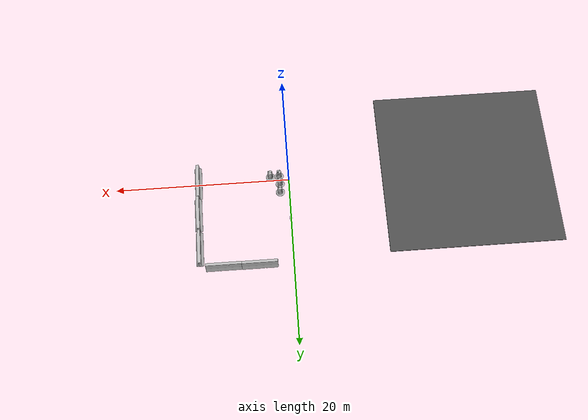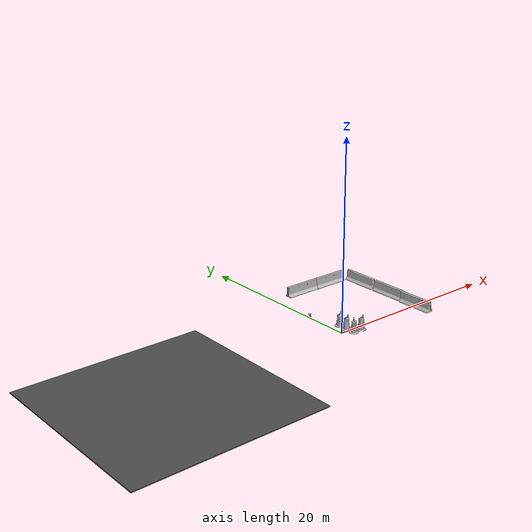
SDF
<sdf version="1.4">
 <world name="default">
  <model name="asphalt_plane">
   <static>1</static>
   <link name="link">
    <collision name="collision"><geometry><box><size>20 20 0.1</size></box></geometry></collision>
    <visual name="visual">
     <cast_shadows>0</cast_shadows>
     <geometry><box><size>20 20 0.1</size></box></geometry>
     <material>
      <script>
       <uri>model://asphalt_plane/materials/scripts</uri>
       <uri>model://asphalt_plane/materials/textures</uri>
       <name>vrc/asphalt</name>
      </script>
     </material>
    </visual>
    <velocity_decay><linear>0</linear><angular>0</angular></velocity_decay>
   </link>
   <pose>-20.8561 -0.082108 0 0 -0 0</pose>
  </model>
  <model name="jersey_barrier_4">
   <static>1</static>
   <link name="link">
    <visual name="visual">
     <geometry><mesh><uri>model://jersey_barrier/meshes/jersey_barrier.dae</uri></mesh></geometry>
    </visual>
    <collision name="upright">
     <pose>0 0 0.5715 0 -0 0</pose>
     <geometry><box><size>4.06542 0.3063 1.143</size></box></geometry>
    </collision>
    <collision name="base">
     <pose>0 0 0.032258 0 -0 0</pose>
     <geometry><box><size>4.06542 0.8107 0.064516</size></box></geometry>
    </collision>
    <collision name="base2">
     <pose>0 0 0.1 0 -0 0</pose>
     <geometry><box><size>4.06542 0.65 0.1</size></box></geometry>
    </collision>
    <collision name="base3">
     <pose>0 0 0.2 0 -0 0</pose>
     <geometry><box><size>4.06542 0.5 0.1</size></box></geometry>
    </collision>
    <collision name="left-angle">
     <pose>0 -0.224 0.2401 0.9 -0 0</pose>
     <geometry><box><size>4.06542 0.5 0.064516</size></box></geometry>
    </collision>
    <collision name="right-angle">
     <pose>0 0.224 0.2401 -0.9 0 0</pose>
     <geometry><box><size>4.06542 0.5 0.064516</size></box></geometry>
    </collision>
    <velocity_decay><linear>0</linear><angular>0</angular></velocity_decay>
   </link>
   <pose>3.84438 10.4465 0 0 -0 0</pose>
  </model>
  <model name="jersey_barrier_6">
   <static>1</static>
   <link name="link">
    <visual name="visual">
     <geometry><mesh><uri>model://jersey_barrier/meshes/jersey_barrier.dae</uri></mesh></geometry>
    </visual>
    <collision name="upright">
     <pose>0 0 0.5715 0 -0 0</pose>
     <geometry><box><size>4.06542 0.3063 1.143</size></box></geometry>
    </collision>
    <collision name="base">
     <pose>0 0 0.032258 0 -0 0</pose>
     <geometry><box><size>4.06542 0.8107 0.064516</size></box></geometry>
    </collision>
    <collision name="base2">
     <pose>0 0 0.1 0 -0 0</pose>
     <geometry><box><size>4.06542 0.65 0.1</size></box></geometry>
    </collision>
    <collision name="base3">
     <pose>0 0 0.2 0 -0 0</pose>
     <geometry><box><size>4.06542 0.5 0.1</size></box></geometry>
    </collision>
    <collision name="left-angle">
     <pose>0 -0.224 0.2401 0.9 -0 0</pose>
     <geometry><box><size>4.06542 0.5 0.064516</size></box></geometry>
    </collision>
    <collision name="right-angle">
     <pose>0 0.224 0.2401 -0.9 0 0</pose>
     <geometry><box><size>4.06542 0.5 0.064516</size></box></geometry>
    </collision>
    <velocity_decay><linear>0</linear><angular>0</angular></velocity_decay>
   </link>
   <pose>7.83966 10.4295 0 0 -0 0</pose>
  </model>
  <model name="jersey_barrier_9">
   <static>1</static>
   <link name="link">
    <visual name="visual">
     <geometry><mesh><uri>model://jersey_barrier/meshes/jersey_barrier.dae</uri></mesh></geometry>
    </visual>
    <collision name="upright">
     <pose>0 0 0.5715 0 -0 0</pose>
     <geometry><box><size>4.06542 0.3063 1.143</size></box></geometry>
    </collision>
    <collision name="base">
     <pose>0 0 0.032258 0 -0 0</pose>
     <geometry><box><size>4.06542 0.8107 0.064516</size></box></geometry>
    </collision>
    <collision name="base2">
     <pose>0 0 0.1 0 -0 0</pose>
     <geometry><box><size>4.06542 0.65 0.1</size></box></geometry>
    </collision>
    <collision name="base3">
     <pose>0 0 0.2 0 -0 0</pose>
     <geometry><box><size>4.06542 0.5 0.1</size></box></geometry>
    </collision>
    <collision name="left-angle">
     <pose>0 -0.224 0.2401 0.9 -0 0</pose>
     <geometry><box><size>4.06542 0.5 0.064516</size></box></geometry>
    </collision>
    <collision name="right-angle">
     <pose>0 0.224 0.2401 -0.9 0 0</pose>
     <geometry><box><size>4.06542 0.5 0.064516</size></box></geometry>
    </collision>
    <velocity_decay><linear>0</linear><angular>0</angular></velocity_decay>
   </link>
   <pose>10.5684 3.91215 0 0 -0 1.58811</pose>
  </model>
  <model name="jersey_barrier_10">
   <static>1</static>
   <link name="link">
    <visual name="visual">
     <geometry><mesh><uri>model://jersey_barrier/meshes/jersey_barrier.dae</uri></mesh></geometry>
    </visual>
    <collision name="upright">
     <pose>0 0 0.5715 0 -0 0</pose>
     <geometry><box><size>4.06542 0.3063 1.143</size></box></geometry>
    </collision>
    <collision name="base">
     <pose>0 0 0.032258 0 -0 0</pose>
     <geometry><box><size>4.06542 0.8107 0.064516</size></box></geometry>
    </collision>
    <collision name="base2">
     <pose>0 0 0.1 0 -0 0</pose>
     <geometry><box><size>4.06542 0.65 0.1</size></box></geometry>
    </collision>
    <collision name="base3">
     <pose>0 0 0.2 0 -0 0</pose>
     <geometry><box><size>4.06542 0.5 0.1</size></box></geometry>
    </collision>
    <collision name="left-angle">
     <pose>0 -0.224 0.2401 0.9 -0 0</pose>
     <geometry><box><size>4.06542 0.5 0.064516</size></box></geometry>
    </collision>
    <collision name="right-angle">
     <pose>0 0.224 0.2401 -0.9 0 0</pose>
     <geometry><box><size>4.06542 0.5 0.064516</size></box></geometry>
    </collision>
    <velocity_decay><linear>0</linear><angular>0</angular></velocity_decay>
   </link>
   <pose>10.5161 8.14601 0 0 -0 1.57825</pose>
  </model>
  <model name="jersey_barrier_11">
   <static>1</static>
   <link name="link">
    <visual name="visual">
     <geometry><mesh><uri>model://jersey_barrier/meshes/jersey_barrier.dae</uri></mesh></geometry>
    </visual>
    <collision name="upright">
     <pose>0 0 0.5715 0 -0 0</pose>
     <geometry><box><size>4.06542 0.3063 1.143</size></box></geometry>
    </collision>
    <collision name="base">
     <pose>0 0 0.032258 0 -0 0</pose>
     <geometry><box><size>4.06542 0.8107 0.064516</size></box></geometry>
    </collision>
    <collision name="base2">
     <pose>0 0 0.1 0 -0 0</pose>
     <geometry><box><size>4.06542 0.65 0.1</size></box></geometry>
    </collision>
    <collision name="base3">
     <pose>0 0 0.2 0 -0 0</pose>
     <geometry><box><size>4.06542 0.5 0.1</size></box></geometry>
    </collision>
    <collision name="left-angle">
     <pose>0 -0.224 0.2401 0.9 -0 0</pose>
     <geometry><box><size>4.06542 0.5 0.064516</size></box></geometry>
    </collision>
    <collision name="right-angle">
     <pose>0 0.224 0.2401 -0.9 0 0</pose>
     <geometry><box><size>4.06542 0.5 0.064516</size></box></geometry>
    </collision>
    <velocity_decay><linear>0</linear><angular>0</angular></velocity_decay>
   </link>
   <pose>10.516 -0.139078 0 0 -0 1.58306</pose>
  </model>
  <model name="Construction Barrel_1">
   <link name="link">
    <inertial>
     <pose>0 0 0.4 0 -0 0</pose>
     <mass>500</mass>
     <inertia><ixx>51.2096</ixx><iyy>51.2096</iyy><izz>25</izz><ixy>0</ixy><ixz>0</ixz><iyz>0</iyz></inertia>
    </inertial>
    <collision name="collision">
     <geometry><mesh><uri>model://construction_barrel/meshes/construction_barrel.dae</uri></mesh></geometry>
    </collision>
    <visual name="visual">
     <geometry><mesh><uri>model://construction_barrel/meshes/construction_barrel.dae</uri></mesh></geometry>
    </visual>
    <velocity_decay><linear>0</linear><angular>0</angular></velocity_decay>
   </link>
   <pose>2.14353 -0.507203 -9.2e-05 -9.3e-05 -0.000348 -0.037388</pose>
   <static>0</static>
  </model>
  <model name="Construction Barrel_6">
   <link name="link">
    <inertial>
     <pose>0 0 0.4 0 -0 0</pose>
     <mass>500</mass>
     <inertia><ixx>51.2096</ixx><iyy>51.2096</iyy><izz>25</izz><ixy>0</ixy><ixz>0</ixz><iyz>0</iyz></inertia>
    </inertial>
    <collision name="collision">
     <geometry><mesh><uri>model://construction_barrel/meshes/construction_barrel.dae</uri></mesh></geometry>
    </collision>
    <visual name="visual">
     <geometry><mesh><uri>model://construction_barrel/meshes/construction_barrel.dae</uri></mesh></geometry>
    </visual>
    <velocity_decay><linear>0</linear><angular>0</angular></velocity_decay>
   </link>
   <pose>1.12851 -0.53319 -9.1e-05 -9.2e-05 -0.000347 0.954897</pose>
   <static>0</static>
  </model>
  <model name="Construction Barrel_7">
   <link name="link">
    <inertial>
     <pose>0 0 0.4 0 -0 0</pose>
     <mass>500</mass>
     <inertia><ixx>51.2096</ixx><iyy>51.2096</iyy><izz>25</izz><ixy>0</ixy><ixz>0</ixz><iyz>0</iyz></inertia>
    </inertial>
    <collision name="collision">
     <geometry><mesh><uri>model://construction_barrel/meshes/construction_barrel.dae</uri></mesh></geometry>
    </collision>
    <visual name="visual">
     <geometry><mesh><uri>model://construction_barrel/meshes/construction_barrel.dae</uri></mesh></geometry>
    </visual>
    <velocity_decay><linear>0</linear><angular>0</angular></velocity_decay>
   </link>
   <pose>1.06107 0.489439 -0.000169 0.000504 0.000208 0.04856</pose>
   <static>0</static>
  </model>
  <model name="Construction Barrel_8">
   <link name="link">
    <inertial>
     <pose>0 0 0.4 0 -0 0</pose>
     <mass>500</mass>
     <inertia><ixx>51.2096</ixx><iyy>51.2096</iyy><izz>25</izz><ixy>0</ixy><ixz>0</ixz><iyz>0</iyz></inertia>
    </inertial>
    <collision name="collision">
     <geometry><mesh><uri>model://construction_barrel/meshes/construction_barrel.dae</uri></mesh></geometry>
    </collision>
    <visual name="visual">
     <geometry><mesh><uri>model://construction_barrel/meshes/construction_barrel.dae</uri></mesh></geometry>
    </visual>
    <velocity_decay><linear>0</linear><angular>0</angular></velocity_decay>
   </link>
   <pose>1.0951 1.53722 -9.1e-05 0.00031 0.000179 -0.005472</pose>
   <static>0</static>
  </model>
  <model name="turtlebot_4">
   <link name="rack">
    <inertial>
     <pose>0.001453 -0.000453 0.029787 0 -0 0</pose>
     <inertia>
      <ixx>0.05864</ixx>
      <ixy>0.000124</ixy>
      <ixz>0.000615</ixz>
      <iyy>0.058786</iyy>
      <iyz>1.4e-05</iyz>
      <izz>1.53244</izz>
     </inertia>
     <mass>2.234</mass>
    </inertial>
    <collision name="plate_0_collision">
     <pose>-0.04334 0 0.084757 0 -0 0</pose>
     <geometry><box><size>0.233502 0.314845 0.006401</size></box></geometry>
    </collision>
    <visual name="plate_0_visual">
     <pose>-0.04334 0 0.084757 0 -0 0</pose>
     <geometry><mesh><uri>model://turtlebot/meshes/plate_0_logo.dae</uri></mesh></geometry>
    </visual>
    <collision name="plate_1_collision">
     <pose>-0.00266 0 0.141907 0 -0 0</pose>
     <geometry><box><size>0.314856 0.314856 0.006401</size></box></geometry>
    </collision>
    <visual name="plate_1_visual">
     <pose>-0.00266 0 0.141907 0 -0 0</pose>
     <geometry><mesh><uri>model://turtlebot/meshes/plate_1_logo.dae</uri></mesh></geometry>
    </visual>
    <collision name="plate_2_collision">
     <pose>-0.00266 0 0.199108 0 -0 0</pose>
     <geometry><box><size>0.314856 0.314856 0.006401</size></box></geometry>
    </collision>
    <visual name="plate_2_visual">
     <pose>-0.00266 0 0.199108 0 -0 0</pose>
     <geometry><mesh><uri>model://turtlebot/meshes/plate_1_logo.dae</uri></mesh></geometry>
    </visual>
    <collision name="plate_3_collision">
     <pose>-0.01582 0 0.405457 0 -0 0</pose>
     <geometry><box><size>0.288 0.315 0.006401</size></box></geometry>
    </collision>
    <visual name="plate_3_visual">
     <pose>-0.01582 0 0.405457 0 -0 0</pose>
     <geometry><mesh><uri>model://turtlebot/meshes/plate_2_logo.dae</uri></mesh></geometry>
    </visual>
    <collision name="spacer_0_collision">
     <pose>-0.00254 0.111468 0.079992 0 -0 0</pose>
     <geometry><cylinder><radius>0.0127</radius><length>0.003175</length></cylinder></geometry>
    </collision>
    <visual name="spacer_0_visual">
     <pose>-0.00254 0.111468 0.079992 0 -0 0</pose>
     <geometry><mesh><uri>model://turtlebot/meshes/68-02403-125_Spacer.dae</uri></mesh></geometry>
    </visual>
    <collision name="spacer_1_collision">
     <pose>-0.00254 -0.111468 0.079992 0 -0 0</pose>
     <geometry><cylinder><radius>0.0127</radius><length>0.003175</length></cylinder></geometry>
    </collision>
    <visual name="spacer_1_visual">
     <pose>-0.00254 -0.111468 0.079992 0 -0 0</pose>
     <geometry><mesh><uri>model://turtlebot/meshes/68-02403-125_Spacer.dae</uri></mesh></geometry>
    </visual>
    <collision name="spacer_2_collision">
     <pose>-0.07239 -0.111468 0.079992 0 -0 0</pose>
     <geometry><cylinder><radius>0.0127</radius><length>0.003175</length></cylinder></geometry>
    </collision>
    <visual name="spacer_2_visual">
     <pose>-0.07239 -0.111468 0.079992 0 -0 0</pose>
     <geometry><mesh><uri>model://turtlebot/meshes/68-02403-125_Spacer.dae</uri></mesh></geometry>
    </visual>
    <collision name="spacer_3_collision">
     <pose>-0.07239 0.111468 0.079992 0 -0 0</pose>
     <geometry><cylinder><radius>0.0127</radius><length>0.003175</length></cylinder></geometry>
    </collision>
    <visual name="spacer_3_visual">
     <pose>-0.07239 0.111468 0.079992 0 -0 0</pose>
     <geometry><mesh><uri>model://turtlebot/meshes/68-02403-125_Spacer.dae</uri></mesh></geometry>
    </visual>
    <collision name="standoff_2in_0_collision">
     <pose>0.06764 0.13142 0.08798 0 -0 0</pose>
     <geometry><cylinder><radius>0.0381</radius><length>0.0635</length></cylinder></geometry>
    </collision>
    <visual name="standoff_2in_0_visual">
     <pose>0.06764 0.13142 0.08798 0 -0 0</pose>
     <geometry>
      <mesh><uri>model://turtlebot/meshes/68-04552-2000-RA_Turtlebot_M-F_Standoff.dae</uri></mesh>
     </geometry>
    </visual>
    <collision name="standoff_2in_1_collision">
     <pose>0.06764 -0.13142 0.08798 0 -0 0</pose>
     <geometry><cylinder><radius>0.0381</radius><length>0.0635</length></cylinder></geometry>
    </collision>
    <visual name="standoff_2in_1_visual">
     <pose>0.06764 -0.13142 0.08798 0 -0 0</pose>
     <geometry>
      <mesh><uri>model://turtlebot/meshes/68-04552-2000-RA_Turtlebot_M-F_Standoff.dae</uri></mesh>
     </geometry>
    </visual>
    <collision name="standoff_2in_2_collision">
     <pose>-0.052832 -0.13142 0.08798 0 -0 0</pose>
     <geometry><cylinder><radius>0.0381</radius><length>0.0635</length></cylinder></geometry>
    </collision>
    <visual name="standoff_2in_2_visual">
     <pose>-0.052832 -0.13142 0.08798 0 -0 0</pose>
     <geometry>
      <mesh><uri>model://turtlebot/meshes/68-04552-2000-RA_Turtlebot_M-F_Standoff.dae</uri></mesh>
     </geometry>
    </visual>
    <collision name="standoff_2in_3_collision">
     <pose>-0.052832 0.13142 0.08798 0 -0 0</pose>
     <geometry><cylinder><radius>0.0381</radius><length>0.0635</length></cylinder></geometry>
    </collision>
    <visual name="standoff_2in_3_visual">
     <pose>-0.052832 0.13142 0.08798 0 -0 0</pose>
     <geometry>
      <mesh><uri>model://turtlebot/meshes/68-04552-2000-RA_Turtlebot_M-F_Standoff.dae</uri></mesh>
     </geometry>
    </visual>
    <collision name="standoff_2in_4_collision">
     <pose>0.06764 0.13142 0.14513 0 -0 0</pose>
     <geometry><cylinder><radius>0.0381</radius><length>0.0635</length></cylinder></geometry>
    </collision>
    <visual name="standoff_2in_4_visual">
     <pose>0.06764 0.13142 0.14513 0 -0 0</pose>
     <geometry>
      <mesh><uri>model://turtlebot/meshes/68-04552-2000-RA_Turtlebot_M-F_Standoff.dae</uri></mesh>
     </geometry>
    </visual>
    <collision name="standoff_2in_5_collision">
     <pose>0.06764 -0.13142 0.14513 0 -0 0</pose>
     <geometry><cylinder><radius>0.0381</radius><length>0.0635</length></cylinder></geometry>
    </collision>
    <visual name="standoff_2in_5_visual">
     <pose>0.06764 -0.13142 0.14513 0 -0 0</pose>
     <geometry>
      <mesh><uri>model://turtlebot/meshes/68-04552-2000-RA_Turtlebot_M-F_Standoff.dae</uri></mesh>
     </geometry>
    </visual>
    <collision name="standoff_2in_6_collision">
     <pose>-0.052832 -0.13142 0.14513 0 -0 0</pose>
     <geometry><cylinder><radius>0.0381</radius><length>0.0635</length></cylinder></geometry>
    </collision>
    <visual name="standoff_2in_6_visual">
     <pose>-0.052832 -0.13142 0.14513 0 -0 0</pose>
     <geometry>
      <mesh><uri>model://turtlebot/meshes/68-04552-2000-RA_Turtlebot_M-F_Standoff.dae</uri></mesh>
     </geometry>
    </visual>
    <collision name="standoff_2in_7_collision">
     <pose>-0.052832 0.13142 0.14513 0 -0 0</pose>
     <geometry><cylinder><radius>0.0381</radius><length>0.0635</length></cylinder></geometry>
    </collision>
    <visual name="standoff_2in_7_visual">
     <pose>-0.052832 0.13142 0.14513 0 -0 0</pose>
     <geometry>
      <mesh><uri>model://turtlebot/meshes/68-04552-2000-RA_Turtlebot_M-F_Standoff.dae</uri></mesh>
     </geometry>
    </visual>
    <collision name="standoff_8in_0_collision">
     <pose>0.06764 0.13142 0.20228 0 -0 0</pose>
     <geometry><cylinder><radius>0.011113</radius><length>0.2032</length></cylinder></geometry>
    </collision>
    <visual name="standoff_8in_0_visual">
     <pose>0.06764 0.13142 0.20228 0 -0 0</pose>
     <geometry>
      <mesh><uri>model://turtlebot/meshes/68-02421-8000-RA_Turtlebot_F-F_Standoff.dae</uri></mesh>
     </geometry>
    </visual>
    <collision name="standoff_8in_1_collision">
     <pose>0.06764 -0.13142 0.20228 0 -0 0</pose>
     <geometry><cylinder><radius>0.011113</radius><length>0.2032</length></cylinder></geometry>
    </collision>
    <visual name="standoff_8in_1_visual">
     <pose>0.06764 -0.13142 0.20228 0 -0 0</pose>
     <geometry>
      <mesh><uri>model://turtlebot/meshes/68-02421-8000-RA_Turtlebot_F-F_Standoff.dae</uri></mesh>
     </geometry>
    </visual>
    <collision name="standoff_8in_2_collision">
     <pose>-0.052832 -0.13142 0.20228 0 -0 0</pose>
     <geometry><cylinder><radius>0.011113</radius><length>0.2032</length></cylinder></geometry>
    </collision>
    <visual name="standoff_8in_2_visual">
     <pose>-0.052832 -0.13142 0.20228 0 -0 0</pose>
     <geometry>
      <mesh><uri>model://turtlebot/meshes/68-02421-8000-RA_Turtlebot_F-F_Standoff.dae</uri></mesh>
     </geometry>
    </visual>
    <collision name="standoff_8in_3_collision">
     <pose>-0.052832 0.13142 0.20228 0 -0 0</pose>
     <geometry><cylinder><radius>0.011113</radius><length>0.2032</length></cylinder></geometry>
    </collision>
    <visual name="standoff_8in_3_visual">
     <pose>-0.052832 0.13142 0.20228 0 -0 0</pose>
     <geometry>
      <mesh><uri>model://turtlebot/meshes/68-02421-8000-RA_Turtlebot_F-F_Standoff.dae</uri></mesh>
     </geometry>
    </visual>
    <collision name="standoff_kinect_0_collision">
     <pose>-0.105098 0.098 0.202308 0 -0 0</pose>
     <geometry><cylinder><radius>0.001111</radius><length>0.008585</length></cylinder></geometry>
    </collision>
    <visual name="standoff_kinect_0_visual">
     <pose>-0.105098 0.098 0.202308 0 -0 0</pose>
     <geometry><mesh><uri>model://turtlebot/meshes/68-04556-RA_Kinect_Standoff_Assy.dae</uri></mesh></geometry>
    </visual>
    <collision name="standoff_kinect_1_collision">
     <pose>-0.105098 -0.098 0.202308 0 -0 0</pose>
     <geometry><cylinder><radius>0.001111</radius><length>0.008585</length></cylinder></geometry>
    </collision>
    <visual name="standoff_kinect_1_visual">
     <pose>-0.105098 -0.098 0.202308 0 -0 0</pose>
     <geometry><mesh><uri>model://turtlebot/meshes/68-04556-RA_Kinect_Standoff_Assy.dae</uri></mesh></geometry>
    </visual>
    <sensor name="laser" type="ray">
     <pose>-0.065 0 0.092 0 -0 0</pose>
     <ray>
      <scan>
       <horizontal>
        <samples>180</samples>
        <resolution>1</resolution>
        <min_angle>-2.26893</min_angle>
        <max_angle>2.26893</max_angle>
       </horizontal>
      </scan>
      <range><min>0.08</min><max>10</max><resolution>0.01</resolution></range>
     </ray>
     <update_rate>20</update_rate>
    </sensor>
    <velocity_decay><linear>0</linear><angular>0</angular></velocity_decay>
   </link>
   <link name="create::base">
    <inertial>
     <pose>0.001453 -0.000453 0.029787 0 -0 0</pose>
     <inertia>
      <ixx>0.05864</ixx>
      <ixy>0.000124</ixy>
      <ixz>0.000615</ixz>
      <iyy>0.058786</iyy>
      <iyz>1.4e-05</iyz>
      <izz>1.53244</izz>
     </inertia>
     <mass>2.234</mass>
    </inertial>
    <collision name="base_collision">
     <pose>0 0 0.0478 0 -0 0</pose>
     <geometry><cylinder><radius>0.016495</radius><length>0.061163</length></cylinder></geometry>
    </collision>
    <visual name="base_visual">
     <pose>0 0 0.0478 0 -0 0</pose>
     <geometry><mesh><uri>model://create/meshes/create_body.dae</uri></mesh></geometry>
    </visual>
    <collision name="front_wheel_collision">
     <pose>0.13 0 0.017 -5.76279e-13 1.5707 1.5707</pose>
     <geometry><sphere><radius>0.018</radius></sphere></geometry>
     <surface>
      <friction><ode><mu>0</mu><mu2>0</mu2><fdir1>0 0 0</fdir1><slip1>0</slip1><slip2>0</slip2></ode></friction>
     </surface>
    </collision>
    <visual name="front_wheel_visual">
     <pose>0.13 0 0.017 -5.76279e-13 1.5707 1.5707</pose>
     <geometry><sphere><radius>0.009</radius></sphere></geometry>
    </visual>
    <collision name="rear_wheel_collision">
     <pose>-0.13 0 0.017 -5.76279e-13 1.5707 1.5707</pose>
     <geometry><sphere><radius>0.015</radius></sphere></geometry>
     <surface>
      <friction><ode><mu>0</mu><mu2>0</mu2><fdir1>0 0 0</fdir1><slip1>0</slip1><slip2>0</slip2></ode></friction>
     </surface>
    </collision>
    <visual name="rear_wheel_visual">
     <pose>-0.13 0 0.017 -5.76279e-13 1.5707 1.5707</pose>
     <geometry><sphere><radius>0.0075</radius></sphere></geometry>
    </visual>
    <sensor name="left_cliff_sensor" type="ray">
     <pose>0.07 0.14 0.027 0 1.57079 0</pose>
     <ray>
      <scan>
       <horizontal>
        <samples>1</samples>
        <resolution>1</resolution>
        <min_angle>0</min_angle>
        <max_angle>0</max_angle>
       </horizontal>
      </scan>
      <range><min>0.01</min><max>0.04</max><resolution>0.1</resolution></range>
     </ray>
    </sensor>
    <sensor name="leftfront_cliff_sensor" type="ray">
     <pose>0.15 0.04 0.027 0 1.57079 0</pose>
     <ray>
      <scan>
       <horizontal>
        <samples>1</samples>
        <resolution>1</resolution>
        <min_angle>0</min_angle>
        <max_angle>0</max_angle>
       </horizontal>
      </scan>
      <range><min>0.01</min><max>0.04</max><resolution>0.1</resolution></range>
     </ray>
    </sensor>
    <sensor name="right_cliff_sensor" type="ray">
     <pose>0.07 -0.14 0.027 0 1.57079 0</pose>
     <ray>
      <scan>
       <horizontal>
        <samples>1</samples>
        <resolution>1</resolution>
        <min_angle>0</min_angle>
        <max_angle>0</max_angle>
       </horizontal>
      </scan>
      <range><min>0.01</min><max>0.04</max><resolution>0.1</resolution></range>
     </ray>
    </sensor>
    <sensor name="rightfront_cliff_sensor" type="ray">
     <pose>0.15 -0.04 0.027 0 1.57079 0</pose>
     <ray>
      <scan>
       <horizontal>
        <samples>1</samples>
        <resolution>1</resolution>
        <min_angle>0</min_angle>
        <max_angle>0</max_angle>
       </horizontal>
      </scan>
      <range><min>0.01</min><max>0.04</max><resolution>0.1</resolution></range>
     </ray>
    </sensor>
    <sensor name="wall_sensor" type="ray">
     <pose>0.09 -0.12 0.059 0 0 -1</pose>
     <ray>
      <scan>
       <horizontal>
        <samples>1</samples>
        <resolution>1</resolution>
        <min_angle>0</min_angle>
        <max_angle>0</max_angle>
       </horizontal>
      </scan>
      <range><min>0.016</min><max>0.04</max><resolution>0.1</resolution></range>
     </ray>
    </sensor>
    <velocity_decay><linear>0</linear><angular>0</angular></velocity_decay>
   </link>
   <link name="create::left_wheel">
    <pose>0 0.13 0.032 0 -0 0</pose>
    <inertial>
     <inertia><ixx>0.001</ixx><ixy>0</ixy><ixz>0</ixz><iyy>0.001</iyy><iyz>0</iyz><izz>0.001</izz></inertia>
     <mass>0.01</mass>
    </inertial>
    <collision name="collision">
     <pose>0 0 0 -5.76279e-13 1.5707 1.5707</pose>
     <geometry><cylinder><radius>0.033</radius><length>0.023</length></cylinder></geometry>
     <surface>
      <friction><ode><mu>10</mu><mu2>10</mu2><fdir1>0 0 0</fdir1><slip1>0</slip1><slip2>0</slip2></ode></friction>
     </surface>
    </collision>
    <visual name="visual">
     <pose>0 0 0 -5.76279e-13 1.5707 1.5707</pose>
     <geometry><cylinder><radius>0.033</radius><length>0.023</length></cylinder></geometry>
    </visual>
    <velocity_decay><linear>0</linear><angular>0</angular></velocity_decay>
   </link>
   <link name="create::right_wheel">
    <pose>0 -0.13 0.032 0 -0 0</pose>
    <inertial>
     <inertia><ixx>0.001</ixx><ixy>0</ixy><ixz>0</ixz><iyy>0.001</iyy><iyz>0</iyz><izz>0.001</izz></inertia>
     <mass>0.01</mass>
    </inertial>
    <collision name="collision">
     <pose>0 0 0 -5.76279e-13 1.5707 1.5707</pose>
     <geometry><cylinder><radius>0.033</radius><length>0.023</length></cylinder></geometry>
     <surface>
      <friction><ode><mu>10</mu><mu2>10</mu2><fdir1>0 0 0</fdir1><slip1>0</slip1><slip2>0</slip2></ode></friction>
     </surface>
    </collision>
    <visual name="visual">
     <pose>0 0 0 -5.76279e-13 1.5707 1.5707</pose>
     <geometry><cylinder><radius>0.033</radius><length>0.023</length></cylinder></geometry>
    </visual>
    <velocity_decay><linear>0</linear><angular>0</angular></velocity_decay>
   </link>
   <joint name="create::left_wheel" type="revolute">
    <parent>create::base</parent>
    <child>create::left_wheel</child>
    <axis><xyz>0 1 0</xyz><limit><lower>-1e+16</lower><upper>1e+16</upper></limit></axis>
   </joint>
   <joint name="create::right_wheel" type="revolute">
    <parent>create::base</parent>
    <child>create::right_wheel</child>
    <axis><xyz>0 1 0</xyz><limit><lower>-1e+16</lower><upper>1e+16</upper></limit></axis>
   </joint>
   <link name="kinect::link">
    <inertial>
     <mass>0.1</mass>
     <inertia><ixx>1</ixx><ixy>0</ixy><ixz>0</ixz><iyy>1</iyy><iyz>0</iyz><izz>1</izz></inertia>
    </inertial>
    <collision name="collision"><geometry><box><size>0.073 0.276 0.072</size></box></geometry></collision>
    <visual name="visual"><geometry><mesh><uri>model://kinect/meshes/kinect.dae</uri></mesh></geometry></visual>
    <sensor name="camera" type="depth">
     <update_rate>20</update_rate>
     <camera name="__default__">
      <horizontal_fov>1.0472</horizontal_fov>
      <image><width>640</width><height>480</height><format>R8G8B8</format></image>
      <clip><near>0.05</near><far>3</far></clip>
     </camera>
    </sensor>
    <velocity_decay><linear>0</linear><angular>0</angular></velocity_decay>
    <pose>-0.087098 0 0.303857 0 -0 0</pose>
   </link>
   <joint name="create_rack" type="revolute">
    <parent>create::base</parent>
    <child>rack</child>
    <axis><xyz>0 0 1</xyz><limit><lower>0</lower><upper>0</upper></limit></axis>
   </joint>
   <joint name="kinect_rack" type="revolute">
    <parent>kinect::link</parent>
    <child>rack</child>
    <axis><xyz>0 0 1</xyz><limit><lower>0</lower><upper>0</upper></limit></axis>
   </joint>
   <pose>0.054447 4.95272 -0.000516 -0.000717 -0.011405 3.12888</pose>
   <static>0</static>
  </model>
 </world>
</sdf>
